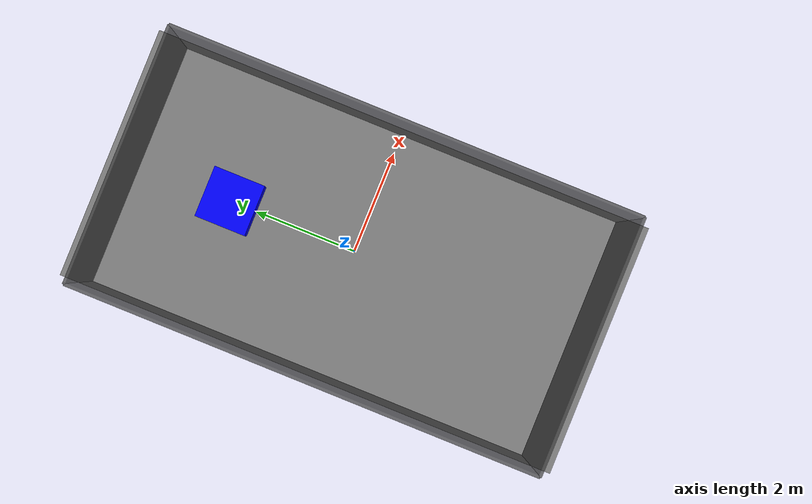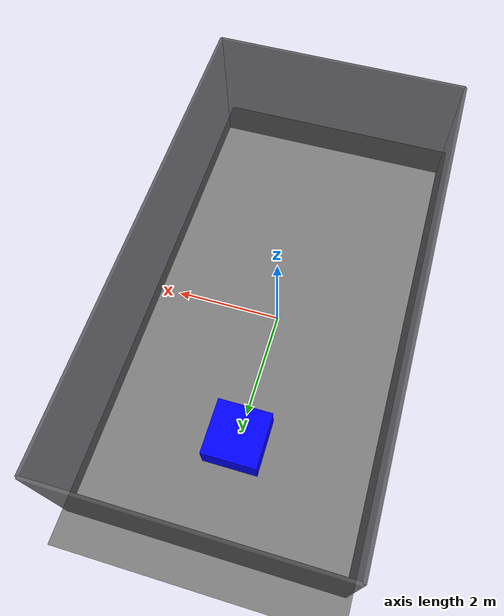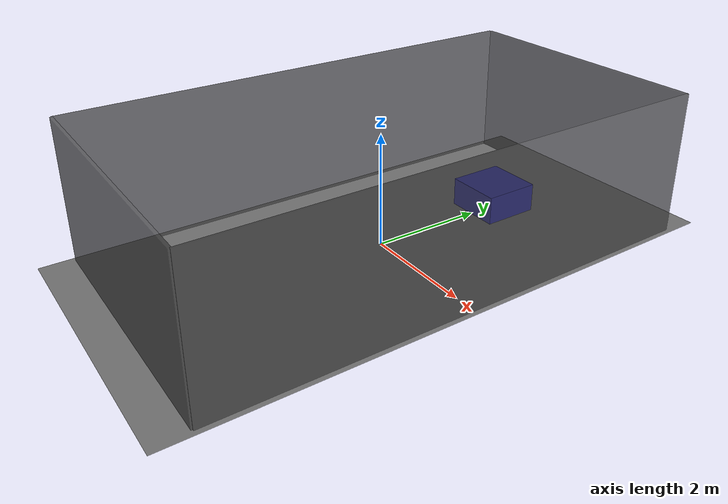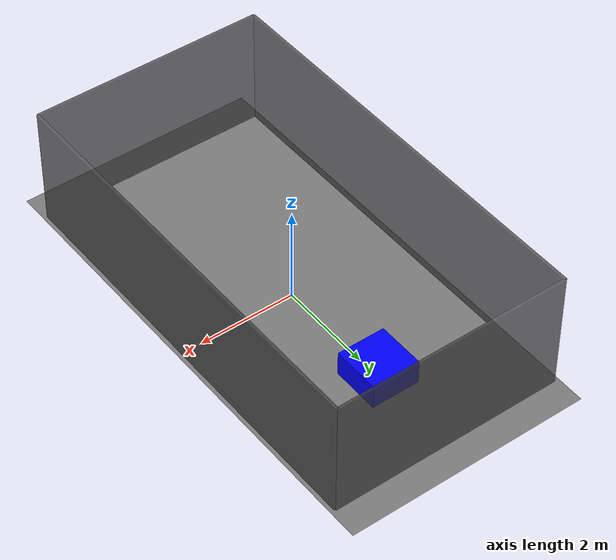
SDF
<?xml version='1.0' encoding="utf-8"?>
<sdf version='1.9'>
  <world name='orl'>
    <plugin
      filename="gz-sim-physics-system"
      name="gz::sim::systems::Physics">
    </plugin>
    <plugin
      filename="gz-sim-user-commands-system"
      name="gz::sim::systems::UserCommands">
    </plugin>
    <plugin
      filename="gz-sim-scene-broadcaster-system"
      name="gz::sim::systems::SceneBroadcaster">
    </plugin>
    <plugin
      filename="gz-sim-apply-link-wrench-system"
      name="gz::sim::systems::ApplyLinkWrench">
    </plugin>

    <!-- Add the even flat floor as ground base of the simulation -->
    <include>
      <uri>model://even_floor</uri>
      <pose>0 0 0 0 0 0</pose>
    </include>

    <!-- Add the ORL walls surrounding the flat floor -->
    <include>
      <uri>model://walls</uri>
      <pose>0 0 0 0 0 0</pose>
    </include>

    <include>
      <uri>model://obstacle</uri>
      <pose>0 2.5 0 0 0 0</pose>
    </include>

    <!-- Add a light source -->
    <light type="directional" name="sun">
      <cast_shadows>true</cast_shadows>
      <pose>0 0 10 0 0 0</pose>
      <diffuse>0.8 0.8 0.8 1</diffuse>
      <specular>0.2 0.2 0.2 1</specular>
      <attenuation>
        <range>1000</range>
        <constant>0.9</constant>
        <linear>0.01</linear>
        <quadratic>0.001</quadratic>
      </attenuation>
      <direction>-0.5 0.1 -0.9</direction>
    </light>

    <physics type="ignored">
      <max_step_size>0.001</max_step_size>
      <!-- Allow the simulation to run as fast as it can-->
      <real_time_update_rate>0</real_time_update_rate>
      <real_time_factor>2</real_time_factor>
    </physics>

  </world>
</sdf>

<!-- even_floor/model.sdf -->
<sdf version='1.9'>
  <model name='even_floor'>
    <static>true</static>
    <!-- Add even flat foor -->
    <link name="link">
      <collision name="collision">
        <geometry>
          <plane>
            <normal>0 0 1</normal>
            <size>5 10</size>
          </plane>
        </geometry>
        <!-- Make floor frictionless -->
        <surface>
          <friction>
            <ode>
              <mu>0.0</mu>
              <mu2>0.0</mu2>
              <slip1>1.0</slip1>
              <slip2>1.0</slip2>
            </ode>
          </friction>
        </surface>
      </collision>

      <visual name="visual">
        <cast_shadows>false</cast_shadows>
        <geometry>
          <plane>
            <normal>0 0 1</normal>
            <size>5 10</size>
          </plane>
        </geometry>
        <material>
          <ambient>0.5 0.5 0.5 1</ambient>
          <diffuse>0.5 0.5 0.5 1</diffuse>
          <specular>0 0 0 0</specular>
          <emissive>0 0 0 1</emissive>
        </material>
      </visual>
    </link>
  </model>
</sdf>

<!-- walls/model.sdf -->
<sdf version='1.9'>
  <model name='walls'>
    <static>true</static>

    <!-- Wall 1, back wall of the ORL -->
    <link name='wall1'>
      <!--Position and orientation of the wall-->
      <pose>0 4.4 0 0 0 0</pose>

      <!-- Specify the shape for collisions -->
      <collision name='collision'>
        <pose>0 0 1.25 0 0 0</pose>
        <geometry>
          <box>
            <size>4.8 0.05 2.5</size>
          </box>
        </geometry>
      </collision>

      <!-- Specify the shape and material for visualization -->
      <visual name='visual'>
        <pose>0 0 1.25 0 0 0</pose>
        <geometry>
          <box>
            <size>4.8 0.05 2.5</size>
          </box>
        </geometry>
        <material>
          <ambient>0.25 0.25 0.25 0.75</ambient>
          <diffuse>0.25 0.25 0.25 0.75</diffuse>
          <specular>0 0 0 0</specular>
          <emissive>0 0 0 1</emissive>
        </material>
        <meta>
          <layer>0</layer>
        </meta>
      </visual>
    </link>

    <!-- Wall 2, GRALS rail side of ORL -->
    <link name='wall2'>
      <!--Position and orientation of the wall-->
      <pose>2.4 0 0 0 0 1.5708</pose>

      <!-- Specify the shape for collisions -->
      <collision name='collision'>
        <pose>0 0 1.25 0 0 0</pose>
        <geometry>
          <box>
            <size>8.8 0.05 2.5</size>
          </box>
        </geometry>
      </collision>

      <!-- Specify the shape and material for visualization -->
      <visual name='visual'>
        <pose>0 0 1.25 0 0 0</pose>
        <geometry>
          <box>
            <size>8.8 0.05 2.5</size>
          </box>
        </geometry>
        <material>
          <ambient>0.25 0.25 0.25 0.75</ambient>
          <diffuse>0.25 0.25 0.25 0.75</diffuse>
          <specular>0 0 0 0</specular>
          <emissive>0 0 0 1</emissive>
        </material>
        <meta>
          <layer>0</layer>
        </meta>
      </visual>
    </link>

        <!-- Wall 3, entry area to the flat floor -->
    <link name='wall3'>
      <!-- Position and orientation of the wall -->
      <pose>0 -4.4 0 0 0 0</pose>

      <!-- Specify the shape for collisions -->
      <collision name='collision'>
        <pose>0 0 1.25 0 0 0</pose>
        <geometry>
          <box>
            <size>4.8 0.05 2.5</size>
          </box>
        </geometry>
      </collision>

      <!-- Specify the shape and material for visualization -->
      <visual name='visual'>
        <pose>0 0 1.25 0 0 0</pose>
        <geometry>
          <box>
            <size>4.8 0.05 2.5</size>
          </box>
        </geometry>
        <material>
          <ambient>0.25 0.25 0.25 0.75</ambient>
          <diffuse>0.25 0.25 0.25 0.75</diffuse>
          <specular>0 0 0 0</specular>
          <emissive>0 0 0 1</emissive>
        </material>
        <meta>
          <layer>0</layer>
        </meta>
      </visual>
    </link>

    <!-- Wall 4, metal mount side wall of ORL -->
    <link name='wall4'>
      <!--Position and orientation of the wall-->
      <pose>-2.4 0 0 0 0 1.5708</pose>

      <!-- Specify the shape for collisions -->
      <collision name='collision'>
        <pose>0 0 1.25 0 0 0</pose>
        <geometry>
          <box>
            <size>8.8 0.05 2.5</size>
          </box>
        </geometry>
      </collision>

      <!-- Specify the shape and material for visualization -->
      <visual name='visual'>
        <pose>0 0 1.25 0 0 0</pose>
        <geometry>
          <box>
            <size>8.8 0.05 2.5</size>
          </box>
        </geometry>
        <material>
          <ambient>0.25 0.25 0.25 0.75</ambient>
          <diffuse>0.25 0.25 0.25 0.75</diffuse>
          <specular>0 0 0 0</specular>
          <emissive>0 0 0 1</emissive>
        </material>
        <meta>
          <layer>0</layer>
        </meta>
      </visual>
    </link>

  </model>
</sdf>

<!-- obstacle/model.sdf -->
<sdf version="1.6">
  <model name="obstacle">
    <static>true</static> <!-- true = non si muove -->
    <link name="link">
      <collision name="collision">
        <geometry>
          <box>
            <size>1 1 1</size> <!-- lato 1 metro -->
          </box>
        </geometry>
      </collision>
      <visual name="visual">
        <geometry>
          <box>
            <size>1 1 1</size>
          </box>
        </geometry>
        <material>
          <ambient>0 0 1 1</ambient>  <!-- blu -->
          <diffuse>0 0 1 1</diffuse>
        </material>
      </visual>
    </link>
  </model>
</sdf>
